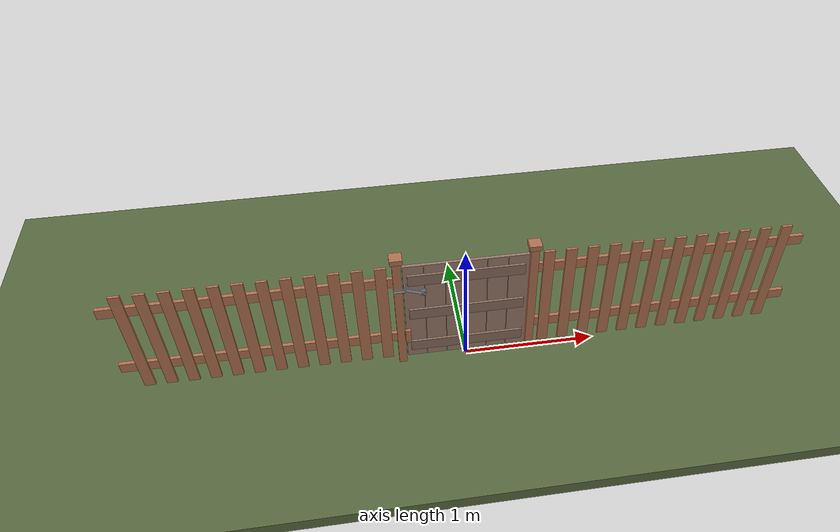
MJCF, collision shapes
<?xml version="1.0" ?>
<mujoco model="db0751_gate_swing_full">
  <compiler angle="radian" meshdir="../../hardware" texturedir="../../textures" autolimits="true" inertiafromgeom="false"/>
  <option timestep="0.002" integrator="implicitfast" cone="elliptic" impratio="10" noslip_iterations="3">
    <flag multiccd="enable"/>
  </option>
  <size memory="16M"/>
  <default>
    <geom condim="4" solref="0.005 1" solimp="0.95 0.99 0.001"/>
    <joint solreflimit="0.005 1" solimplimit="0.95 0.99 0.001"/>
    <tendon solreflimit="0.005 1"/>
    <equality solref="0.002 1"/>
  </default>
  <visual>
    <headlight ambient="0.4 0.4 0.4" diffuse="0.7 0.7 0.7" specular="0.2 0.2 0.2"/>
    <quality shadowsize="4096"/>
    <map znear="0.01" zfar="60"/>
  </visual>
  <asset>
    <mesh name="strap_hinge_f1a982ddce" file="strap_hinge_f1a982ddce.obj"/>
    <material name="mat_floor" rgba="0.35 0.42 0.25 1" specular="0.2" shininess="0.15" reflectance="0"/>
    <material name="mat_wall" rgba="0.78 0.76 0.7 1" specular="0.2" shininess="0.1" reflectance="0"/>
    <material name="mat_leaf" rgba="0.6 0.475 0.41 1" specular="0.2" shininess="0.4" reflectance="0"/>
    <material name="mat_leaf_brace" rgba="0.54 0.427 0.369 1" specular="0.2" shininess="0.2" reflectance="0"/>
    <material name="mat_hinge" rgba="0.65 0.66 0.68 1" specular="0.74" shininess="0.5" reflectance="0.36"/>
    <material name="mat_op_steel_galvanized" rgba="0.65 0.66 0.68 1" specular="0.74" shininess="0.5" reflectance="0.36"/>
    <material name="mat_frame" rgba="0.7 0.45 0.32 1" specular="0.2" shininess="0.4" reflectance="0"/>
    <material name="mat_fence" rgba="0.7 0.45 0.32 1" specular="0.2" shininess="0.4" reflectance="0"/>
    <texture name="skybox" type="skybox" builtin="gradient" rgb1="0.6 0.7 0.85" rgb2="0.9 0.92 0.95" width="256" height="256"/>
  </asset>
  <worldbody>
    <light name="sun" pos="1.5 -2.5 4" dir="-0.3 0.5 -0.8" directional="true" diffuse="0.8 0.8 0.8" specular="0.3 0.3 0.3" castshadow="true"/>
    <light name="fill" pos="-1.5 2.5 3" dir="0.3 -0.5 -0.7" directional="true" diffuse="0.35 0.35 0.4" castshadow="false"/>
    <camera name="robot_view" pos="0 -1.875 0.985" xyaxes="1 0 0 0 0.26963 0.962964" fovy="52"/>
    <camera name="far_view" pos="0 1.875 0.985" xyaxes="-1 0 0 0 -0.26963 0.962964" fovy="52"/>
    <camera name="iso" pos="-1.425 -1.575 1.285" xyaxes="0.741536 -0.670913 0 0.242917 0.268487 0.932151" fovy="46"/>
    <camera name="detail_handle" pos="-0.256 -0.8245 1.085" xyaxes="0.97561 0.219512 0 -0.070934 0.315262 0.94635" fovy="38"/>
    <geom name="floor" type="box" size="6 6 0.05" pos="0 0 -0.05" material="mat_floor" group="0" contype="1" conaffinity="1" friction="0.8 0.005 0.0001" density="2400"/>
    <geom name="hinge_pintle_0" type="cylinder" size="0.008 0.02" pos="0.453 0.05 0.174" material="mat_hinge" group="1" contype="0" conaffinity="0" density="7850"/>
    <geom name="hinge_pintle_1" type="cylinder" size="0.008 0.02" pos="0.453 0.05 0.774" material="mat_hinge" group="1" contype="0" conaffinity="0" density="7850"/>
    <geom name="post_hinge" type="box" size="0.03 0.03 0.5" pos="0.486 0 0.5" material="mat_frame" group="0" contype="1" conaffinity="1" friction="0.6 0.005 0.0001" density="350"/>
    <geom name="post_hinge_cap" type="box" size="0.045 0.045 0.02" pos="0.486 0 1.02" material="mat_frame" group="1" contype="0" conaffinity="0" density="350"/>
    <geom name="post_latch" type="box" size="0.03 0.03 0.5" pos="-0.486 0 0.5" material="mat_frame" group="0" contype="1" conaffinity="1" friction="0.6 0.005 0.0001" density="350"/>
    <geom name="post_latch_cap" type="box" size="0.045 0.045 0.02" pos="-0.486 0 1.02" material="mat_frame" group="1" contype="0" conaffinity="0" density="350"/>
    <geom name="gate_stop" type="box" size="0.02 0.012 0.06" pos="-0.436 -0.0465 0.3" material="mat_frame" group="0" contype="1" conaffinity="1" friction="0.6 0.005 0.0001" density="350"/>
    <geom name="fence_picket_l_0" type="box" size="0.04 0.01 0.45" pos="-0.596 0 0.5" material="mat_fence" group="0" contype="1" conaffinity="1" friction="0.6 0.005 0.0001" density="400"/>
    <geom name="fence_picket_l_1" type="box" size="0.04 0.01 0.45" pos="-0.756 0 0.5" material="mat_fence" group="0" contype="1" conaffinity="1" friction="0.6 0.005 0.0001" density="400"/>
    <geom name="fence_picket_l_2" type="box" size="0.04 0.01 0.45" pos="-0.916 0 0.5" material="mat_fence" group="0" contype="1" conaffinity="1" friction="0.6 0.005 0.0001" density="400"/>
    <geom name="fence_picket_l_3" type="box" size="0.04 0.01 0.45" pos="-1.076 0 0.5" material="mat_fence" group="0" contype="1" conaffinity="1" friction="0.6 0.005 0.0001" density="400"/>
    <geom name="fence_picket_l_4" type="box" size="0.04 0.01 0.45" pos="-1.236 0 0.5" material="mat_fence" group="0" contype="1" conaffinity="1" friction="0.6 0.005 0.0001" density="400"/>
    <geom name="fence_picket_l_5" type="box" size="0.04 0.01 0.45" pos="-1.396 0 0.5" material="mat_fence" group="0" contype="1" conaffinity="1" friction="0.6 0.005 0.0001" density="400"/>
    <geom name="fence_picket_l_6" type="box" size="0.04 0.01 0.45" pos="-1.556 0 0.5" material="mat_fence" group="0" contype="1" conaffinity="1" friction="0.6 0.005 0.0001" density="400"/>
    <geom name="fence_picket_l_7" type="box" size="0.04 0.01 0.45" pos="-1.716 0 0.5" material="mat_fence" group="0" contype="1" conaffinity="1" friction="0.6 0.005 0.0001" density="400"/>
    <geom name="fence_picket_l_8" type="box" size="0.04 0.01 0.45" pos="-1.876 0 0.5" material="mat_fence" group="0" contype="1" conaffinity="1" friction="0.6 0.005 0.0001" density="400"/>
    <geom name="fence_picket_l_9" type="box" size="0.04 0.01 0.45" pos="-2.036 0 0.5" material="mat_fence" group="0" contype="1" conaffinity="1" friction="0.6 0.005 0.0001" density="400"/>
    <geom name="fence_picket_l_10" type="box" size="0.04 0.01 0.45" pos="-2.196 0 0.5" material="mat_fence" group="0" contype="1" conaffinity="1" friction="0.6 0.005 0.0001" density="400"/>
    <geom name="fence_picket_l_11" type="box" size="0.04 0.01 0.45" pos="-2.356 0 0.5" material="mat_fence" group="0" contype="1" conaffinity="1" friction="0.6 0.005 0.0001" density="400"/>
    <geom name="fence_rail_l" type="box" size="1 0.015 0.04" pos="-1.516 0.015 0.8" material="mat_fence" group="0" contype="1" conaffinity="1" friction="0.6 0.005 0.0001" density="400"/>
    <geom name="fence_rail_b_l" type="box" size="1 0.015 0.04" pos="-1.516 0.015 0.25" material="mat_fence" group="0" contype="1" conaffinity="1" friction="0.6 0.005 0.0001" density="400"/>
    <geom name="fence_picket_r_0" type="box" size="0.04 0.01 0.45" pos="0.596 0 0.5" material="mat_fence" group="0" contype="1" conaffinity="1" friction="0.6 0.005 0.0001" density="400"/>
    <geom name="fence_picket_r_1" type="box" size="0.04 0.01 0.45" pos="0.756 0 0.5" material="mat_fence" group="0" contype="1" conaffinity="1" friction="0.6 0.005 0.0001" density="400"/>
    <geom name="fence_picket_r_2" type="box" size="0.04 0.01 0.45" pos="0.916 0 0.5" material="mat_fence" group="0" contype="1" conaffinity="1" friction="0.6 0.005 0.0001" density="400"/>
    <geom name="fence_picket_r_3" type="box" size="0.04 0.01 0.45" pos="1.076 0 0.5" material="mat_fence" group="0" contype="1" conaffinity="1" friction="0.6 0.005 0.0001" density="400"/>
    <geom name="fence_picket_r_4" type="box" size="0.04 0.01 0.45" pos="1.236 0 0.5" material="mat_fence" group="0" contype="1" conaffinity="1" friction="0.6 0.005 0.0001" density="400"/>
    <geom name="fence_picket_r_5" type="box" size="0.04 0.01 0.45" pos="1.396 0 0.5" material="mat_fence" group="0" contype="1" conaffinity="1" friction="0.6 0.005 0.0001" density="400"/>
    <geom name="fence_picket_r_6" type="box" size="0.04 0.01 0.45" pos="1.556 0 0.5" material="mat_fence" group="0" contype="1" conaffinity="1" friction="0.6 0.005 0.0001" density="400"/>
    <geom name="fence_picket_r_7" type="box" size="0.04 0.01 0.45" pos="1.716 0 0.5" material="mat_fence" group="0" contype="1" conaffinity="1" friction="0.6 0.005 0.0001" density="400"/>
    <geom name="fence_picket_r_8" type="box" size="0.04 0.01 0.45" pos="1.876 0 0.5" material="mat_fence" group="0" contype="1" conaffinity="1" friction="0.6 0.005 0.0001" density="400"/>
    <geom name="fence_picket_r_9" type="box" size="0.04 0.01 0.45" pos="2.036 0 0.5" material="mat_fence" group="0" contype="1" conaffinity="1" friction="0.6 0.005 0.0001" density="400"/>
    <geom name="fence_picket_r_10" type="box" size="0.04 0.01 0.45" pos="2.196 0 0.5" material="mat_fence" group="0" contype="1" conaffinity="1" friction="0.6 0.005 0.0001" density="400"/>
    <geom name="fence_picket_r_11" type="box" size="0.04 0.01 0.45" pos="2.356 0 0.5" material="mat_fence" group="0" contype="1" conaffinity="1" friction="0.6 0.005 0.0001" density="400"/>
    <geom name="fence_rail_r" type="box" size="1 0.015 0.04" pos="1.516 0.015 0.8" material="mat_fence" group="0" contype="1" conaffinity="1" friction="0.6 0.005 0.0001" density="400"/>
    <geom name="fence_rail_b_r" type="box" size="1 0.015 0.04" pos="1.516 0.015 0.25" material="mat_fence" group="0" contype="1" conaffinity="1" friction="0.6 0.005 0.0001" density="400"/>
    <geom name="hinge_pintle_0_strap_0" type="box" size="0.0064 0.0065 0.016" pos="0.453 0.036 0.174" material="mat_hinge" group="1" contype="0" conaffinity="0" density="7850"/>
    <geom name="hinge_pintle_1_strap_0" type="box" size="0.0064 0.0065 0.016" pos="0.453 0.036 0.774" material="mat_hinge" group="1" contype="0" conaffinity="0" density="7850"/>
    <geom name="gate_stop_strap_0" type="box" size="0.02 0.00275 0.048" pos="-0.44 -0.03225 0.3" material="mat_frame" group="1" contype="0" conaffinity="0" density="7850"/>
    <site name="approach_point" pos="0 -1.5 0" quat="1 0 0 0" size="0.05" rgba="0.2 0.9 0.2 0.5" group="4"/>
    <site name="goal_point" pos="0 1.5 0" quat="1 0 0 0" size="0.05" rgba="0.2 0.9 0.2 0.5" group="4"/>
    <site name="door_plane_center" pos="0 0 0.46" quat="1 0 0 0" size="0.02" rgba="0.2 0.9 0.2 0.5" group="4"/>
    <body name="leaf" pos="0.456 0 0">
      <inertial pos="-0.393239 0.003828 0.504004" mass="8.745337" quat="0.699575 -0.701162 0.091616 0.102825" diaginertia="0.620535956 0.669946268 1.288415304"/>
      <joint name="leaf_hinge" type="hinge" axis="0 0 -1" pos="-0.003 0.05 0" limited="true" range="0 1.396263" damping="1.106642" frictionloss="0.683646" stiffness="5" springref="-0.8" armature="0.02"/>
      <geom name="leaf_slab" type="box" size="0.45 0.0125 0.45" pos="-0.453 0 0.5" material="mat_leaf" group="0" contype="1" conaffinity="1" friction="0.35 0.005 0.0001" density="1"/>
      <geom name="leaf_plank_gap_1" type="box" size="0.002 0.0135 0.44" pos="-0.153 0 0.5" material="mat_leaf_brace" group="1" contype="0" conaffinity="0" density="1"/>
      <geom name="leaf_plank_gap_2" type="box" size="0.002 0.0135 0.44" pos="-0.303 0 0.5" material="mat_leaf_brace" group="1" contype="0" conaffinity="0" density="1"/>
      <geom name="leaf_plank_gap_3" type="box" size="0.002 0.0135 0.44" pos="-0.453 0 0.5" material="mat_leaf_brace" group="1" contype="0" conaffinity="0" density="1"/>
      <geom name="leaf_plank_gap_4" type="box" size="0.002 0.0135 0.44" pos="-0.603 0 0.5" material="mat_leaf_brace" group="1" contype="0" conaffinity="0" density="1"/>
      <geom name="leaf_plank_gap_5" type="box" size="0.002 0.0135 0.44" pos="-0.753 0 0.5" material="mat_leaf_brace" group="1" contype="0" conaffinity="0" density="1"/>
      <geom name="leaf_batten_17" type="box" size="0.42 0.01 0.045" pos="-0.453 -0.0225 0.17" material="mat_leaf_brace" group="1" contype="0" conaffinity="0" density="1"/>
      <geom name="leaf_batten_83" type="box" size="0.42 0.01 0.045" pos="-0.453 -0.0225 0.83" material="mat_leaf_brace" group="1" contype="0" conaffinity="0" density="1"/>
      <geom name="leaf_batten_50" type="box" size="0.42 0.01 0.045" pos="-0.453 -0.0225 0.5" material="mat_leaf_brace" group="1" contype="0" conaffinity="0" density="1"/>
      <geom name="hinge_strap_0" type="mesh" mesh="strap_hinge_f1a982ddce" pos="-0.003 0.0155 0.2" quat="0 0 0 1" material="mat_hinge" group="1" contype="0" conaffinity="0" density="7850"/>
      <geom name="hinge_strap_eye_0" type="cylinder" size="0.011 0.012" pos="-0.003 0.05 0.2" material="mat_hinge" group="1" contype="0" conaffinity="0" density="7850"/>
      <geom name="hinge_strap_neck_0" type="box" size="0.012 0.02125 0.006" pos="-0.003 0.03275 0.2" material="mat_hinge" group="1" contype="0" conaffinity="0" density="7850"/>
      <geom name="hinge_strap_1" type="mesh" mesh="strap_hinge_f1a982ddce" pos="-0.003 0.0155 0.8" quat="0 0 0 1" material="mat_hinge" group="1" contype="0" conaffinity="0" density="7850"/>
      <geom name="hinge_strap_eye_1" type="cylinder" size="0.011 0.012" pos="-0.003 0.05 0.8" material="mat_hinge" group="1" contype="0" conaffinity="0" density="7850"/>
      <geom name="hinge_strap_neck_1" type="box" size="0.012 0.02125 0.006" pos="-0.003 0.03275 0.8" material="mat_hinge" group="1" contype="0" conaffinity="0" density="7850"/>
      <geom name="leaf_fork_strap_n" type="box" size="0.02 0.002 0.03" pos="-0.763 -0.0145 0.7" material="mat_op_steel_galvanized" group="1" contype="0" conaffinity="0" density="7800"/>
      <geom name="leaf_fork_strap_p" type="box" size="0.02 0.002 0.03" pos="-0.763 0.0145 0.7" material="mat_op_steel_galvanized" group="1" contype="0" conaffinity="0" density="7800"/>
      <geom name="leaf_fork_pin" type="cylinder" size="0.005 0.0245" pos="-0.763 -0.008 0.7" quat="0.707107 -0.707107 0 0" material="mat_op_steel_galvanized" group="1" contype="0" conaffinity="0" density="7800"/>
      <site name="leaf_edge_mid" pos="-0.903 0 0.45" quat="1 0 0 0" size="0.02" rgba="0.2 0.9 0.2 0.5" group="4"/>
      <body name="leaf_fork" pos="-0.763 0 0.7">
        <inertial pos="-0.108366 -0.012016 0.039297" mass="0.192163" quat="0.983588 -0.051116 0.152557 -0.081664" diaginertia="0.000152691 0.0007793 0.00087054"/>
        <joint name="leaf_fork_hinge" type="hinge" axis="0 1 0" limited="true" range="0 1.2" damping="0.028928" frictionloss="0.004642" armature="0.0001"/>
        <geom name="leaf_fork_arm" type="box" size="0.069176 0.004 0.012" pos="-0.0645 -0.0245 0.025" quat="0.982958 0 0.183833 0" material="mat_op_steel_galvanized" group="0" contype="1" conaffinity="1" friction="0.6 0.005 0.0001" density="2500"/>
        <geom name="leaf_fork_eye" type="cylinder" size="0.014 0.005" pos="0 -0.0245 0" quat="0.707107 -0.707107 0 0" material="mat_op_steel_galvanized" group="1" contype="0" conaffinity="0" density="2500"/>
        <geom name="leaf_fork_tine_n" type="box" size="0.04 0.003 0.012" pos="-0.169 -0.039 0.05" material="mat_op_steel_galvanized" group="0" contype="1" conaffinity="1" friction="0.6 0.005 0.0001" density="2500"/>
        <geom name="leaf_fork_tine_p" type="box" size="0.04 0.003 0.012" pos="-0.169 0.039 0.05" material="mat_op_steel_galvanized" group="0" contype="1" conaffinity="1" friction="0.6 0.005 0.0001" density="2500"/>
        <geom name="leaf_fork_bridge" type="box" size="0.004 0.042 0.012" pos="-0.129 0 0.05" material="mat_op_steel_galvanized" group="0" contype="1" conaffinity="1" friction="0.6 0.005 0.0001" density="2500"/>
        <geom name="leaf_fork_handle" type="capsule" size="0.006 0.018" pos="-0.129 -0.0245 0.08" material="mat_op_steel_galvanized" group="0" contype="1" conaffinity="1" friction="0.7 0.01 0.0001" density="2500"/>
        <site name="leaf_fork_grip" pos="-0.129 -0.0245 0.105" quat="1 0 0 0" size="0.012" rgba="0.2 0.9 0.2 0.5" group="4"/>
      </body>
    </body>
  </worldbody>
  <sensor>
    <jointpos name="leaf_hinge_pos" joint="leaf_hinge"/>
    <jointvel name="leaf_hinge_vel" joint="leaf_hinge"/>
    <jointpos name="leaf_fork_hinge_pos" joint="leaf_fork_hinge"/>
    <jointvel name="leaf_fork_hinge_vel" joint="leaf_fork_hinge"/>
  </sensor>
</mujoco>
